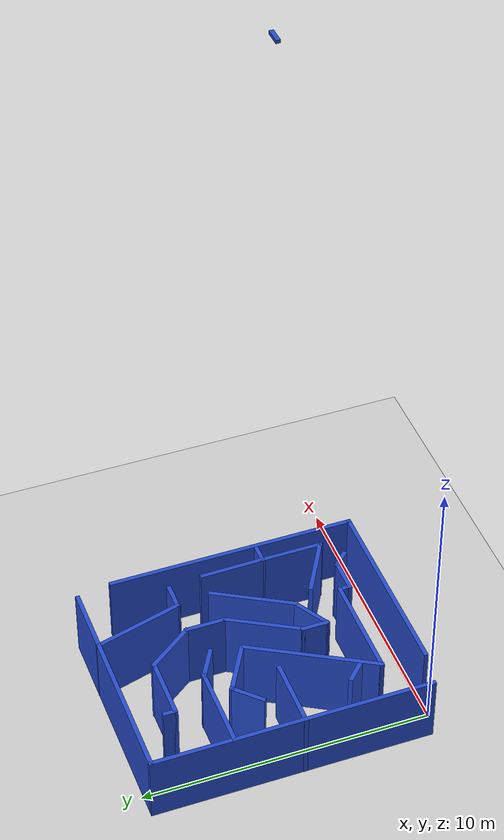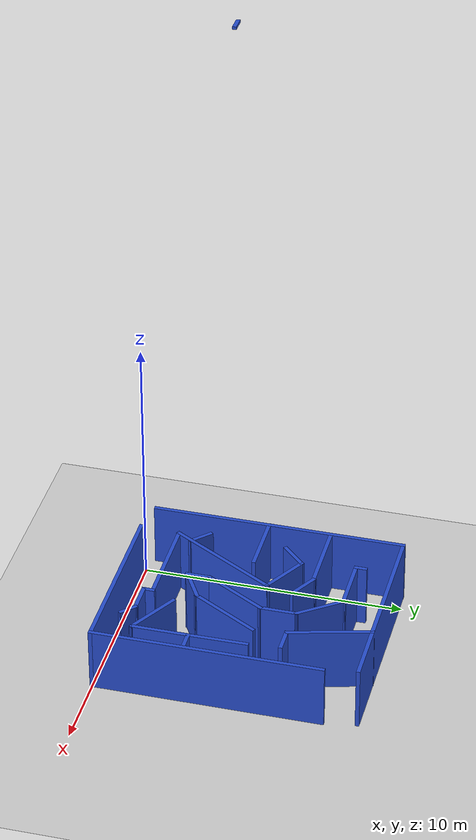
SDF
<sdf version="1.7">
 <world name="default">
  <plugin filename="gz-sim-physics-system" name="gz::sim::systems::Physics"/>
  <plugin filename="gz-sim-user-commands-system" name="gz::sim::systems::UserCommands"/>
  <plugin filename="gz-sim-scene-broadcaster-system" name="gz::sim::systems::SceneBroadcaster"/>
  <plugin filename="gz-sim-sensors-system" name="gz::sim::systems::Sensors">
   <render_engine>ogre2</render_engine>
  </plugin>
  <plugin filename="gz-sim-contact-system" name="gz::sim::systems::Contact"/>
  <light name="sun" type="directional">
   <pose>0 0 10 0 -0 0</pose>
   <diffuse>0.8 0.8 0.8 1</diffuse>
   <specular>0.2 0.2 0.2 1</specular>
   <attenuation>
    <range>1000</range>
    <constant>0.9</constant>
    <linear>0.01</linear>
    <quadratic>0.001</quadratic>
   </attenuation>
   <direction>-0.5 0.1 -0.9</direction>
   <spot><inner_angle>0</inner_angle><outer_angle>0</outer_angle><falloff>0</falloff></spot>
  </light>
  <model name="ground_plane">
   <static>1</static>
   <link name="link">
    <collision name="collision">
     <geometry><plane><normal>0 0 1</normal><size>100 100</size></plane></geometry>
     <surface><friction><ode><mu>100</mu><mu2>50</mu2></ode></friction></surface>
    </collision>
    <visual name="visual">
     <cast_shadows>0</cast_shadows>
     <geometry><plane><normal>0 0 1</normal><size>100 100</size></plane></geometry>
     <material>
      <script><uri>file://media/materials/scripts/gazebo.material</uri><name>Gazebo/Grey</name></script>
     </material>
    </visual>
   </link>
  </model>
  <gravity>0 0 -9.8</gravity>
  <magnetic_field>6e-06 2.3e-05 -4.2e-05</magnetic_field>
  <atmosphere type="adiabatic"/>
  <physics type="ode">
   <max_step_size>0.001</max_step_size>
   <real_time_factor>1</real_time_factor>
   <real_time_update_rate>1000</real_time_update_rate>
  </physics>
  <scene><ambient>0.4 0.4 0.4 1</ambient><background>0.7 0.7 0.7 1</background><shadows>0</shadows></scene>
  <spherical_coordinates>
   <surface_model>EARTH_WGS84</surface_model>
   <latitude_deg>0</latitude_deg>
   <longitude_deg>0</longitude_deg>
   <elevation>0</elevation>
   <heading_deg>0</heading_deg>
  </spherical_coordinates>
  <model name="camera">
   <link name="link_0">
    <inertial>
     <mass>0.00707571</mass>
     <inertia>
      <ixx>1.66494e-05</ixx>
      <ixy>0</ixy>
      <ixz>0</ixz>
      <iyy>0.000165453</iyy>
      <iyz>0</iyz>
      <izz>0.000169817</izz>
     </inertia>
    </inertial>
    <visual name="visual">
     <geometry><box><size>0.519789 0.133487 0.102067</size></box></geometry>
     <material>
      <lighting>1</lighting>
      <script><uri>file://media/materials/scripts/gazebo.material</uri><name>Gazebo/Blue</name></script>
      <shader type="pixel"/>
     </material>
     <cast_shadows>0</cast_shadows>
    </visual>
    <collision name="collision">
     <geometry><box><size>0.519789 0.133487 0.102067</size></box></geometry>
     <surface>
      <friction>
       <ode><mu>1</mu><mu2>1</mu2><fdir1>0 0 0</fdir1><slip1>0</slip1><slip2>0</slip2></ode>
       <torsional>
        <coefficient>1</coefficient>
        <patch_radius>0</patch_radius>
        <surface_radius>0</surface_radius>
        <use_patch_radius>1</use_patch_radius>
        <ode><slip>0</slip></ode>
       </torsional>
      </friction>
      <bounce><restitution_coefficient>0</restitution_coefficient><threshold>1e+06</threshold></bounce>
      <contact>
       <collide_without_contact>0</collide_without_contact>
       <collide_without_contact_bitmask>1</collide_without_contact_bitmask>
       <collide_bitmask>1</collide_bitmask>
       <ode>
        <soft_cfm>0</soft_cfm>
        <soft_erp>0.2</soft_erp>
        <kp>1e+13</kp>
        <kd>1</kd>
        <max_vel>0.01</max_vel>
        <min_depth>0</min_depth>
       </ode>
       <bullet>
        <split_impulse>1</split_impulse>
        <split_impulse_penetration_threshold>-0.01</split_impulse_penetration_threshold>
        <soft_cfm>0</soft_cfm>
        <soft_erp>0.2</soft_erp>
        <kp>1e+13</kp>
        <kd>1</kd>
       </bullet>
      </contact>
     </surface>
    </collision>
    <sensor name="upper_camera" type="camera">
     <pose>0 0 0 0 1.57 0</pose>
     <always_on>1</always_on>
     <visualize>1</visualize>
     <update_rate>30</update_rate>
     <camera name="Maze_Upper_Camera">
      <horizontal_fov>1.0856</horizontal_fov>
      <image><width>1280</width><height>720</height><format>R8G8B8</format></image>
      <clip><near>0.03</near><far>100</far></clip>
      <noise><type>gaussian</type><mean>0</mean><stddev>0.007</stddev></noise>
     </camera>
     <topic>upper_camera/image_raw</topic>
    </sensor>
   </link>
   <static>1</static>
   <pose>2.99941 4.46162 25.4161 0 -0 0</pose>
  </model>
  <model name="maze_2">
   <pose>3.19542 4.92683 0 0 -0 0</pose>
   <link name="Wall_12">
    <collision name="Wall_12_Collision">
     <geometry><box><size>8.75 0.15 2.5</size></box></geometry>
     <pose>0 0 1.25 0 -0 0</pose>
    </collision>
    <visual name="Wall_12_Visual">
     <pose>0 0 1.25 0 -0 0</pose>
     <geometry><box><size>8.75 0.15 2.5</size></box></geometry>
     <material>
      <script><uri>file://media/materials/scripts/gazebo.material</uri><name>Gazebo/Blue</name></script>
      <ambient>0.996078 0.47451 0.0196078 1</ambient>
     </material>
     <meta><layer>0</layer></meta>
    </visual>
    <pose>3.92259 -0.630829 0 0 -0 -1.5708</pose>
   </link>
   <link name="Wall_13">
    <collision name="Wall_13_Collision">
     <geometry><box><size>6.75 0.15 2.5</size></box></geometry>
     <pose>0 0 1.25 0 -0 0</pose>
    </collision>
    <visual name="Wall_13_Visual">
     <pose>0 0 1.25 0 -0 0</pose>
     <geometry><box><size>6.75 0.15 2.5</size></box></geometry>
     <material>
      <script><uri>file://media/materials/scripts/gazebo.material</uri><name>Gazebo/Blue</name></script>
      <ambient>0.996078 0.47451 0.0196078 1</ambient>
     </material>
     <meta><layer>0</layer></meta>
    </visual>
    <pose>0.622594 -4.93083 0 0 -0 3.14159</pose>
   </link>
   <link name="Wall_15">
    <collision name="Wall_15_Collision">
     <geometry><box><size>4.75 0.15 2.5</size></box></geometry>
     <pose>0 0 1.25 0 -0 0</pose>
    </collision>
    <visual name="Wall_15_Visual">
     <pose>0 0 1.25 0 -0 0</pose>
     <geometry><box><size>4.75 0.15 2.5</size></box></geometry>
     <material>
      <script><uri>file://media/materials/scripts/gazebo.material</uri><name>Gazebo/Blue</name></script>
      <ambient>0 0 0 1</ambient>
     </material>
     <meta><layer>0</layer></meta>
    </visual>
    <pose>-1.44258 -1.42975 0 0 -0 1.0472</pose>
   </link>
   <link name="Wall_16">
    <collision name="Wall_16_Collision">
     <geometry><box><size>2 0.15 2.5</size></box></geometry>
     <pose>0 0 1.25 0 -0 0</pose>
    </collision>
    <visual name="Wall_16_Visual">
     <pose>0 0 1.25 0 -0 0</pose>
     <geometry><box><size>2 0.15 2.5</size></box></geometry>
     <material>
      <script><uri>file://media/materials/scripts/gazebo.material</uri><name>Gazebo/Blue</name></script>
      <ambient>0 0 0 1</ambient>
     </material>
     <meta><layer>0</layer></meta>
    </visual>
    <pose>-1.09366 1.02461 0 0 -0 2.61799</pose>
   </link>
   <link name="Wall_18">
    <collision name="Wall_18_Collision">
     <geometry><box><size>1 0.15 2.5</size></box></geometry>
     <pose>0 0 1.25 0 -0 0</pose>
    </collision>
    <visual name="Wall_18_Visual">
     <pose>0 0 1.25 0 -0 0</pose>
     <geometry><box><size>1 0.15 2.5</size></box></geometry>
     <material>
      <script><uri>file://media/materials/scripts/gazebo.material</uri><name>Gazebo/Blue</name></script>
      <ambient>0 0 0 1</ambient>
     </material>
     <meta><layer>0</layer></meta>
    </visual>
    <pose>-2.5473 -2.56248 0 0 -0 2.35619</pose>
   </link>
   <link name="Wall_20">
    <collision name="Wall_20_Collision">
     <geometry><box><size>2.5 0.15 2.5</size></box></geometry>
     <pose>0 0 1.25 0 -0 0</pose>
    </collision>
    <visual name="Wall_20_Visual">
     <pose>0 0 1.25 0 -0 0</pose>
     <geometry><box><size>2.5 0.15 2.5</size></box></geometry>
     <material>
      <script><uri>file://media/materials/scripts/gazebo.material</uri><name>Gazebo/Blue</name></script>
      <ambient>0 0 0 1</ambient>
     </material>
     <meta><layer>0</layer></meta>
    </visual>
    <pose>-2.74759 -0.256182 0 0 -0 0</pose>
   </link>
   <link name="Wall_22">
    <collision name="Wall_22_Collision">
     <geometry><box><size>1.25 0.15 2.5</size></box></geometry>
     <pose>0 0 1.25 0 -0 0</pose>
    </collision>
    <visual name="Wall_22_Visual">
     <pose>0 0 1.25 0 -0 0</pose>
     <geometry><box><size>1.25 0.15 2.5</size></box></geometry>
     <material>
      <script><uri>file://media/materials/scripts/gazebo.material</uri><name>Gazebo/Blue</name></script>
      <ambient>0 0 0 1</ambient>
     </material>
     <meta><layer>0</layer></meta>
    </visual>
    <pose>-2.28364 1.0982 0 0 -0 -2.35619</pose>
   </link>
   <link name="Wall_24">
    <collision name="Wall_24_Collision">
     <geometry><box><size>3 0.15 2.5</size></box></geometry>
     <pose>0 0 1.25 0 -0 0</pose>
    </collision>
    <visual name="Wall_24_Visual">
     <pose>0 0 1.25 0 -0 0</pose>
     <geometry><box><size>3 0.15 2.5</size></box></geometry>
     <material>
      <script><uri>file://media/materials/scripts/gazebo.material</uri><name>Gazebo/Blue</name></script>
      <ambient>0 0 0 1</ambient>
     </material>
     <meta><layer>0</layer></meta>
    </visual>
    <pose>-2.48295 2.1404 0 0 -0 0</pose>
   </link>
   <link name="Wall_25">
    <collision name="Wall_25_Collision">
     <geometry><box><size>1.25 0.15 2.5</size></box></geometry>
     <pose>0 0 1.25 0 -0 0</pose>
    </collision>
    <visual name="Wall_25_Visual">
     <pose>0 0 1.25 0 -0 0</pose>
     <geometry><box><size>1.25 0.15 2.5</size></box></geometry>
     <material>
      <script><uri>file://media/materials/scripts/gazebo.material</uri><name>Gazebo/Blue</name></script>
      <ambient>0 0 0 1</ambient>
     </material>
     <meta><layer>0</layer></meta>
    </visual>
    <pose>-0.581633 1.8654 0 0 -0 -0.523599</pose>
   </link>
   <link name="Wall_27">
    <collision name="Wall_27_Collision">
     <geometry><box><size>3.75 0.15 2.5</size></box></geometry>
     <pose>0 0 1.25 0 -0 0</pose>
    </collision>
    <visual name="Wall_27_Visual">
     <pose>0 0 1.25 0 -0 0</pose>
     <geometry><box><size>3.75 0.15 2.5</size></box></geometry>
     <material>
      <script><uri>file://media/materials/scripts/gazebo.material</uri><name>Gazebo/Blue</name></script>
      <ambient>0 0 0 1</ambient>
     </material>
     <meta><layer>0</layer></meta>
    </visual>
    <pose>-0.792584 -3.42161 0 0 -0 0</pose>
   </link>
   <link name="Wall_29">
    <collision name="Wall_29_Collision">
     <geometry><box><size>0.5 0.15 2.5</size></box></geometry>
     <pose>0 0 1.25 0 -0 0</pose>
    </collision>
    <visual name="Wall_29_Visual">
     <pose>0 0 1.25 0 -0 0</pose>
     <geometry><box><size>0.5 0.15 2.5</size></box></geometry>
     <material>
      <script><uri>file://media/materials/scripts/gazebo.material</uri><name>Gazebo/Blue</name></script>
      <ambient>0 0 0 1</ambient>
     </material>
     <meta><layer>0</layer></meta>
    </visual>
    <pose>1.00742 -3.59661 0 0 -0 -1.5708</pose>
   </link>
   <link name="Wall_3">
    <collision name="Wall_3_Collision">
     <geometry><box><size>9.75 0.15 2.5</size></box></geometry>
     <pose>0 0 1.25 0 -0 0</pose>
    </collision>
    <visual name="Wall_3_Visual">
     <pose>0 0 1.25 0 -0 0</pose>
     <geometry><box><size>9.75 0.15 2.5</size></box></geometry>
     <material>
      <script><uri>file://media/materials/scripts/gazebo.material</uri><name>Gazebo/Blue</name></script>
      <ambient>0.996078 0.47451 0.0196078 1</ambient>
     </material>
     <meta><layer>0</layer></meta>
    </visual>
    <pose>-3.91589 0.119305 0 0 -0 1.5708</pose>
   </link>
   <link name="Wall_30">
    <collision name="Wall_30_Collision">
     <geometry><box><size>1.25 0.15 2.5</size></box></geometry>
     <pose>0 0 1.25 0 -0 0</pose>
    </collision>
    <visual name="Wall_30_Visual">
     <pose>0 0 1.25 0 -0 0</pose>
     <geometry><box><size>1.25 0.15 2.5</size></box></geometry>
     <material>
      <script><uri>file://media/materials/scripts/gazebo.material</uri><name>Gazebo/Blue</name></script>
      <ambient>0 0 0 1</ambient>
     </material>
     <meta><layer>0</layer></meta>
    </visual>
    <pose>1.55741 -3.77161 0 0 -0 0</pose>
   </link>
   <link name="Wall_31">
    <collision name="Wall_31_Collision">
     <geometry><box><size>0.75 0.15 2.5</size></box></geometry>
     <pose>0 0 1.25 0 -0 0</pose>
    </collision>
    <visual name="Wall_31_Visual">
     <pose>0 0 1.25 0 -0 0</pose>
     <geometry><box><size>0.75 0.15 2.5</size></box></geometry>
     <material>
      <script><uri>file://media/materials/scripts/gazebo.material</uri><name>Gazebo/Blue</name></script>
      <ambient>0 0 0 1</ambient>
     </material>
     <meta><layer>0</layer></meta>
    </visual>
    <pose>2.31955 -3.98374 0 0 -0 -0.785398</pose>
   </link>
   <link name="Wall_34">
    <collision name="Wall_34_Collision">
     <geometry><box><size>2.25 0.15 2.5</size></box></geometry>
     <pose>0 0 1.25 0 -0 0</pose>
    </collision>
    <visual name="Wall_34_Visual">
     <pose>0 0 1.25 0 -0 0</pose>
     <geometry><box><size>2.25 0.15 2.5</size></box></geometry>
     <material>
      <script><uri>file://media/materials/scripts/gazebo.material</uri><name>Gazebo/Blue</name></script>
      <ambient>0 0 0 1</ambient>
     </material>
     <meta><layer>0</layer></meta>
    </visual>
    <pose>2.30704 -3.05659 0 0 -0 -0.523599</pose>
   </link>
   <link name="Wall_35">
    <collision name="Wall_35_Collision">
     <geometry><box><size>2.25 0.15 2.5</size></box></geometry>
     <pose>0 0 1.25 0 -0 0</pose>
    </collision>
    <visual name="Wall_35_Visual">
     <pose>0 0 1.25 0 -0 0</pose>
     <geometry><box><size>2.25 0.15 2.5</size></box></geometry>
     <material>
      <script><uri>file://media/materials/scripts/gazebo.material</uri><name>Gazebo/Blue</name></script>
      <ambient>0 0 0 1</ambient>
     </material>
     <meta><layer>0</layer></meta>
    </visual>
    <pose>3.21637 -2.53159 0 0 -0 1.5708</pose>
   </link>
   <link name="Wall_36">
    <collision name="Wall_36_Collision">
     <geometry><box><size>0.75 0.15 2.5</size></box></geometry>
     <pose>0 0 1.25 0 -0 0</pose>
    </collision>
    <visual name="Wall_36_Visual">
     <pose>0 0 1.25 0 -0 0</pose>
     <geometry><box><size>0.75 0.15 2.5</size></box></geometry>
     <material>
      <script><uri>file://media/materials/scripts/gazebo.material</uri><name>Gazebo/Blue</name></script>
      <ambient>0 0 0 1</ambient>
     </material>
     <meta><layer>0</layer></meta>
    </visual>
    <pose>3.51636 -1.48159 0 0 -0 0</pose>
   </link>
   <link name="Wall_39">
    <collision name="Wall_39_Collision">
     <geometry><box><size>1.5 0.15 2.5</size></box></geometry>
     <pose>0 0 1.25 0 -0 0</pose>
    </collision>
    <visual name="Wall_39_Visual">
     <pose>0 0 1.25 0 -0 0</pose>
     <geometry><box><size>1.5 0.15 2.5</size></box></geometry>
     <material>
      <script><uri>file://media/materials/scripts/gazebo.material</uri><name>Gazebo/Blue</name></script>
      <ambient>0 0 0 1</ambient>
     </material>
     <meta><layer>0</layer></meta>
    </visual>
    <pose>0.331293 -2.11272 0 0 -0 -2.61799</pose>
   </link>
   <link name="Wall_41">
    <collision name="Wall_41_Collision">
     <geometry><box><size>1 0.15 2.5</size></box></geometry>
     <pose>0 0 1.25 0 -0 0</pose>
    </collision>
    <visual name="Wall_41_Visual">
     <pose>0 0 1.25 0 -0 0</pose>
     <geometry><box><size>1 0.15 2.5</size></box></geometry>
     <material>
      <script><uri>file://media/materials/scripts/gazebo.material</uri><name>Gazebo/Blue</name></script>
      <ambient>0 0 0 1</ambient>
     </material>
     <meta><layer>0</layer></meta>
    </visual>
    <pose>-0.253274 -2.02522 0 0 -0 1.5708</pose>
   </link>
   <link name="Wall_42">
    <collision name="Wall_42_Collision">
     <geometry><box><size>2.75 0.15 2.5</size></box></geometry>
     <pose>0 0 1.25 0 -0 0</pose>
    </collision>
    <visual name="Wall_42_Visual">
     <pose>0 0 1.25 0 -0 0</pose>
     <geometry><box><size>2.75 0.15 2.5</size></box></geometry>
     <material>
      <script><uri>file://media/materials/scripts/gazebo.material</uri><name>Gazebo/Blue</name></script>
      <ambient>0 0 0 1</ambient>
     </material>
     <meta><layer>0</layer></meta>
    </visual>
    <pose>0.396726 -0.474385 0 0 -0 1.0472</pose>
   </link>
   <link name="Wall_44">
    <collision name="Wall_44_Collision">
     <geometry><box><size>3 0.15 2.5</size></box></geometry>
     <pose>0 0 1.25 0 -0 0</pose>
    </collision>
    <visual name="Wall_44_Visual">
     <pose>0 0 1.25 0 -0 0</pose>
     <geometry><box><size>3 0.15 2.5</size></box></geometry>
     <material>
      <script><uri>file://media/materials/scripts/gazebo.material</uri><name>Gazebo/Blue</name></script>
      <ambient>0 0 0 1</ambient>
     </material>
     <meta><layer>0</layer></meta>
    </visual>
    <pose>1.62836 -0.541132 0 0 -0 1.0472</pose>
   </link>
   <link name="Wall_46">
    <collision name="Wall_46_Collision">
     <geometry><box><size>2.32469 0.15 2.5</size></box></geometry>
     <pose>0 0 1.25 0 -0 0</pose>
    </collision>
    <visual name="Wall_46_Visual">
     <pose>0 0 1.25 0 -0 0</pose>
     <geometry><box><size>2.32469 0.15 2.5</size></box></geometry>
     <material>
      <script><uri>file://media/materials/scripts/gazebo.material</uri><name>Gazebo/Blue</name></script>
      <ambient>0 0 0 1</ambient>
     </material>
     <meta><layer>0</layer></meta>
    </visual>
    <pose>3.20361 -0.394318 0 0 -0 -1.55907</pose>
   </link>
   <link name="Wall_48">
    <collision name="Wall_48_Collision">
     <geometry><box><size>1.5 0.15 2.5</size></box></geometry>
     <pose>0 0 1.25 0 -0 0</pose>
    </collision>
    <visual name="Wall_48_Visual">
     <pose>0 0 1.25 0 -0 0</pose>
     <geometry><box><size>1.5 0.15 2.5</size></box></geometry>
     <material>
      <script><uri>file://media/materials/scripts/gazebo.material</uri><name>Gazebo/Blue</name></script>
      <ambient>0 0 0 1</ambient>
     </material>
     <meta><layer>0</layer></meta>
    </visual>
    <pose>1.04673 1.32645 0 0 -0 1.5708</pose>
   </link>
   <link name="Wall_49">
    <collision name="Wall_49_Collision">
     <geometry><box><size>2.01011 0.15 2.5</size></box></geometry>
     <pose>0 0 1.25 0 -0 0</pose>
    </collision>
    <visual name="Wall_49_Visual">
     <pose>0 0 1.25 0 -0 0</pose>
     <geometry><box><size>2.01011 0.15 2.5</size></box></geometry>
     <material>
      <script><uri>file://media/materials/scripts/gazebo.material</uri><name>Gazebo/Blue</name></script>
      <ambient>0 0 0 1</ambient>
     </material>
     <meta><layer>0</layer></meta>
    </visual>
    <pose>0.496726 2.75145 0 0 -0 2.20355</pose>
   </link>
   <link name="Wall_50">
    <collision name="Wall_50_Collision">
     <geometry><box><size>2.25 0.15 2.5</size></box></geometry>
     <pose>0 0 1.25 0 -0 0</pose>
    </collision>
    <visual name="Wall_50_Visual">
     <pose>0 0 1.25 0 -0 0</pose>
     <geometry><box><size>2.25 0.15 2.5</size></box></geometry>
     <material>
      <script><uri>file://media/materials/scripts/gazebo.material</uri><name>Gazebo/Blue</name></script>
      <ambient>0 0 0 1</ambient>
     </material>
     <meta><layer>0</layer></meta>
    </visual>
    <pose>-1.10327 3.50145 0 0 -0 3.14159</pose>
   </link>
   <link name="Wall_51">
    <collision name="Wall_51_Collision">
     <geometry><box><size>0.5 0.15 2.5</size></box></geometry>
     <pose>0 0 1.25 0 -0 0</pose>
    </collision>
    <visual name="Wall_51_Visual">
     <pose>0 0 1.25 0 -0 0</pose>
     <geometry><box><size>0.5 0.15 2.5</size></box></geometry>
     <material>
      <script><uri>file://media/materials/scripts/gazebo.material</uri><name>Gazebo/Blue</name></script>
      <ambient>0 0 0 1</ambient>
     </material>
     <meta><layer>0</layer></meta>
    </visual>
    <pose>-2.15327 3.67645 0 0 -0 1.5708</pose>
   </link>
   <link name="Wall_54">
    <collision name="Wall_54_Collision">
     <geometry><box><size>3.25 0.15 2.5</size></box></geometry>
     <pose>0 0 1.25 0 -0 0</pose>
    </collision>
    <visual name="Wall_54_Visual">
     <pose>0 0 1.25 0 -0 0</pose>
     <geometry><box><size>3.25 0.15 2.5</size></box></geometry>
     <material>
      <script><uri>file://media/materials/scripts/gazebo.material</uri><name>Gazebo/Blue</name></script>
      <ambient>0 0 0 1</ambient>
     </material>
     <meta><layer>0</layer></meta>
    </visual>
    <pose>1.79815 3.41679 0 0 -0 -1.309</pose>
   </link>
   <link name="Wall_55">
    <collision name="Wall_55_Collision">
     <geometry><box><size>1 0.15 2.5</size></box></geometry>
     <pose>0 0 1.25 0 -0 0</pose>
    </collision>
    <visual name="Wall_55_Visual">
     <pose>0 0 1.25 0 -0 0</pose>
     <geometry><box><size>1 0.15 2.5</size></box></geometry>
     <material>
      <script><uri>file://media/materials/scripts/gazebo.material</uri><name>Gazebo/Blue</name></script>
      <ambient>0 0 0 1</ambient>
     </material>
     <meta><layer>0</layer></meta>
    </visual>
    <pose>2.62432 1.9196 0 0 -0 0</pose>
   </link>
   <link name="Wall_8">
    <collision name="Wall_8_Collision">
     <geometry><box><size>7.75 0.15 2.5</size></box></geometry>
     <pose>0 0 1.25 0 -0 0</pose>
    </collision>
    <visual name="Wall_8_Visual">
     <pose>0 0 1.25 0 -0 0</pose>
     <geometry><box><size>7.75 0.15 2.5</size></box></geometry>
     <material>
      <script><uri>file://media/materials/scripts/gazebo.material</uri><name>Gazebo/Blue</name></script>
      <ambient>0.996078 0.47451 0.0196078 1</ambient>
     </material>
     <meta><layer>0</layer></meta>
    </visual>
    <pose>-0.115891 4.9193 0 0 -0 0</pose>
   </link>
   <static>1</static>
  </model>
 </world>
</sdf>
